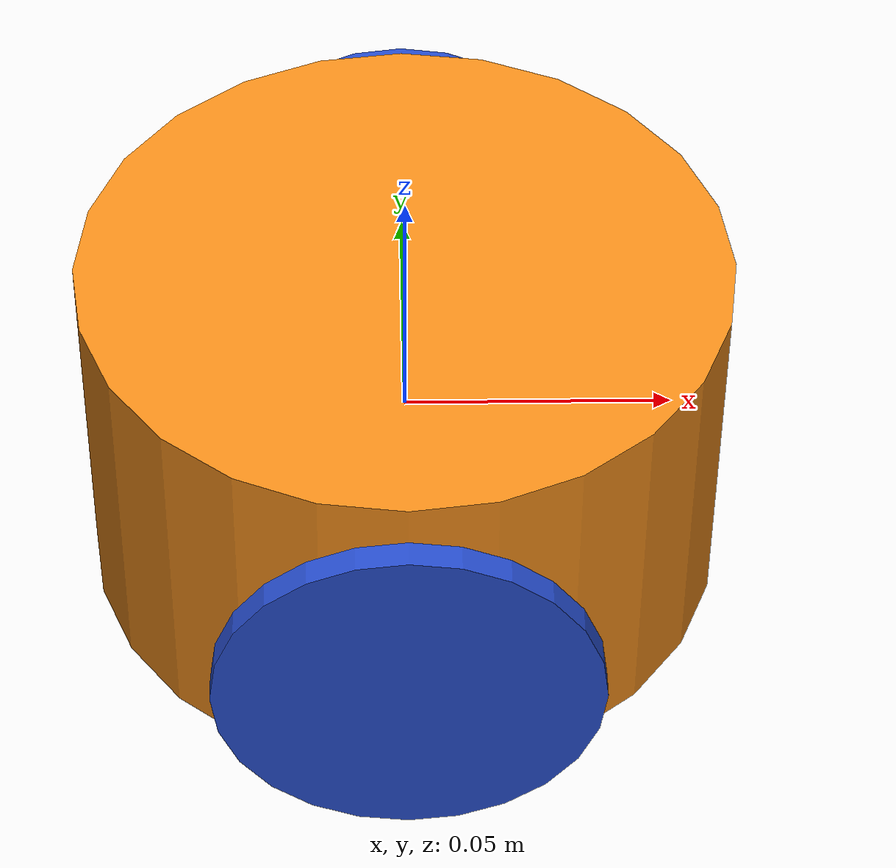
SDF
<?xml version="1.0" ?>
<sdf version='1.11'>
  <model name='kabot'>
    <link name='base_link'>
      <inertial>
        <pose>0 0 0 0 0 0</pose>
        <mass>0.10000000000000001</mass>
        <inertia>
          <ixx>0.00013083333333333331</ixx>
          <ixy>0</ixy>
          <ixz>0</ixz>
          <iyy>0.00013083333333333331</iyy>
          <iyz>0</iyz>
          <izz>0.00018000000000000001</izz>
        </inertia>
      </inertial>
      <collision name='base_link_fixed_joint_lump__chassis_link_collision'>
        <pose>0 0 0 0 0 0</pose>
        <geometry>
          <cylinder>
            <length>0.070000000000000007</length>
            <radius>0.059999999999999998</radius>
          </cylinder>
        </geometry>
        <surface>
          <contact>
            <ode/>
          </contact>
          <friction>
            <ode/>
          </friction>
        </surface>
      </collision>
      <visual name='base_link_fixed_joint_lump__chassis_link_visual'>
        <pose>0 0 0 0 0 0</pose>
        <geometry>
          <cylinder>
            <length>0.070000000000000007</length>
            <radius>0.059999999999999998</radius>
          </cylinder>
        </geometry>
        <material>
          <script>
            <name>Gazebo/Orange</name>
            <uri>file://media/materials/scripts/gazebo.material</uri>
          </script>
          <diffuse>1 1 1 1</diffuse>
          <ambient>1 1 1 1</ambient>
        </material>
      </visual>
    </link>
    <joint name='left_wheel_joint' type='revolute'>
      <pose relative_to='base_link'>0 0.065000000000000002 -0.0050000000000000001 -1.5707963267948959 0 0</pose>
      <parent>base_link</parent>
      <child>left_wheel_link</child>
      <axis>
        <xyz>0 0 1</xyz>
        <limit>
          <lower>-inf</lower>
          <upper>inf</upper>
        </limit>
        <dynamics>
          <spring_reference>0</spring_reference>
          <spring_stiffness>0</spring_stiffness>
        </dynamics>
      </axis>
    </joint>
    <link name='left_wheel_link'>
      <pose relative_to='left_wheel_joint'>0 0 0 0 0 0</pose>
      <inertial>
        <pose>0 0 0 0 0 0</pose>
        <mass>0.10000000000000001</mass>
        <inertia>
          <ixx>3.0833333333333342e-05</ixx>
          <ixy>0</ixy>
          <ixz>0</ixz>
          <iyy>3.0833333333333342e-05</iyy>
          <iyz>0</iyz>
          <izz>6.1250000000000012e-05</izz>
        </inertia>
      </inertial>
      <collision name='left_wheel_link_collision'>
        <pose>0 0 0 0 0 0</pose>
        <geometry>
          <cylinder>
            <length>0.0050000000000000001</length>
            <radius>0.035000000000000003</radius>
          </cylinder>
        </geometry>
        <surface>
          <contact>
            <ode/>
          </contact>
          <friction>
            <ode/>
          </friction>
        </surface>
      </collision>
      <visual name='left_wheel_link_visual'>
        <pose>0 0 0 0 0 0</pose>
        <geometry>
          <cylinder>
            <length>0.0050000000000000001</length>
            <radius>0.035000000000000003</radius>
          </cylinder>
        </geometry>
        <material>
          <script>
            <name>Gazebo/Blue</name>
            <uri>file://media/materials/scripts/gazebo.material</uri>
          </script>
          <diffuse>0 0 1 1</diffuse>
          <ambient>0 0 1 1</ambient>
        </material>
      </visual>
    </link>
    <joint name='right_wheel_joint' type='revolute'>
      <pose relative_to='base_link'>0 -0.065000000000000002 -0.0050000000000000001 -1.5707963267948959 0 0</pose>
      <parent>base_link</parent>
      <child>right_wheel_link</child>
      <axis>
        <xyz>0 0 1</xyz>
        <limit>
          <lower>-inf</lower>
          <upper>inf</upper>
        </limit>
        <dynamics>
          <spring_reference>0</spring_reference>
          <spring_stiffness>0</spring_stiffness>
        </dynamics>
      </axis>
    </joint>
    <link name='right_wheel_link'>
      <pose relative_to='right_wheel_joint'>0 0 0 0 0 0</pose>
      <inertial>
        <pose>0 0 0 0 0 0</pose>
        <mass>0.10000000000000001</mass>
        <inertia>
          <ixx>3.0833333333333342e-05</ixx>
          <ixy>0</ixy>
          <ixz>0</ixz>
          <iyy>3.0833333333333342e-05</iyy>
          <iyz>0</iyz>
          <izz>6.1250000000000012e-05</izz>
        </inertia>
      </inertial>
      <collision name='right_wheel_link_collision'>
        <pose>0 0 0 0 0 0</pose>
        <geometry>
          <cylinder>
            <length>0.0050000000000000001</length>
            <radius>0.035000000000000003</radius>
          </cylinder>
        </geometry>
        <surface>
          <contact>
            <ode/>
          </contact>
          <friction>
            <ode/>
          </friction>
        </surface>
      </collision>
      <visual name='right_wheel_link_visual'>
        <pose>0 0 0 0 0 0</pose>
        <geometry>
          <cylinder>
            <length>0.0050000000000000001</length>
            <radius>0.035000000000000003</radius>
          </cylinder>
        </geometry>
        <material>
          <script>
            <name>Gazebo/Blue</name>
            <uri>file://media/materials/scripts/gazebo.material</uri>
          </script>
          <diffuse>0 0 1 1</diffuse>
          <ambient>0 0 1 1</ambient>
        </material>
      </visual>
    </link>
    <plugin name='ignition::gazebo::systems::DiffDrive' filename='ignition-gazebo-diff-drive-system'>
      <left_joint>left_wheel_joint</left_joint>
      <right_joint>right_wheel_joint</right_joint>
      <wheel_separation>0.13</wheel_separation>
      <wheel_radius>0.35</wheel_radius>
      <odom_publish_frequency>1</odom_publish_frequency>
      <max_linear_acceleration>1</max_linear_acceleration>
      <min_linear_acceleration>-1</min_linear_acceleration>
      <max_angular_acceleration>2</max_angular_acceleration>
      <min_angular_acceleration>-2</min_angular_acceleration>
      <max_linear_velocity>0.5</max_linear_velocity>
      <min_linear_velocity>-0.5</min_linear_velocity>
      <max_angular_velocity>1</max_angular_velocity>
      <min_angular_velocity>-1</min_angular_velocity>
    </plugin>
    <frame name='chassis_joint' attached_to='base_link'>
      <pose>0 0 0 0 0 0</pose>
    </frame>
    <frame name='chassis_link' attached_to='chassis_joint'>
      <pose>0 0 0 0 0 0</pose>
    </frame>
    <frame name='footprint_joint' attached_to='base_link'>
      <pose>0 0 -0.035000000000000003 0 0 0</pose>
    </frame>
    <frame name='footprint_link' attached_to='footprint_joint'>
      <pose>0 0 0 0 0 0</pose>
    </frame>
  </model>
</sdf>
